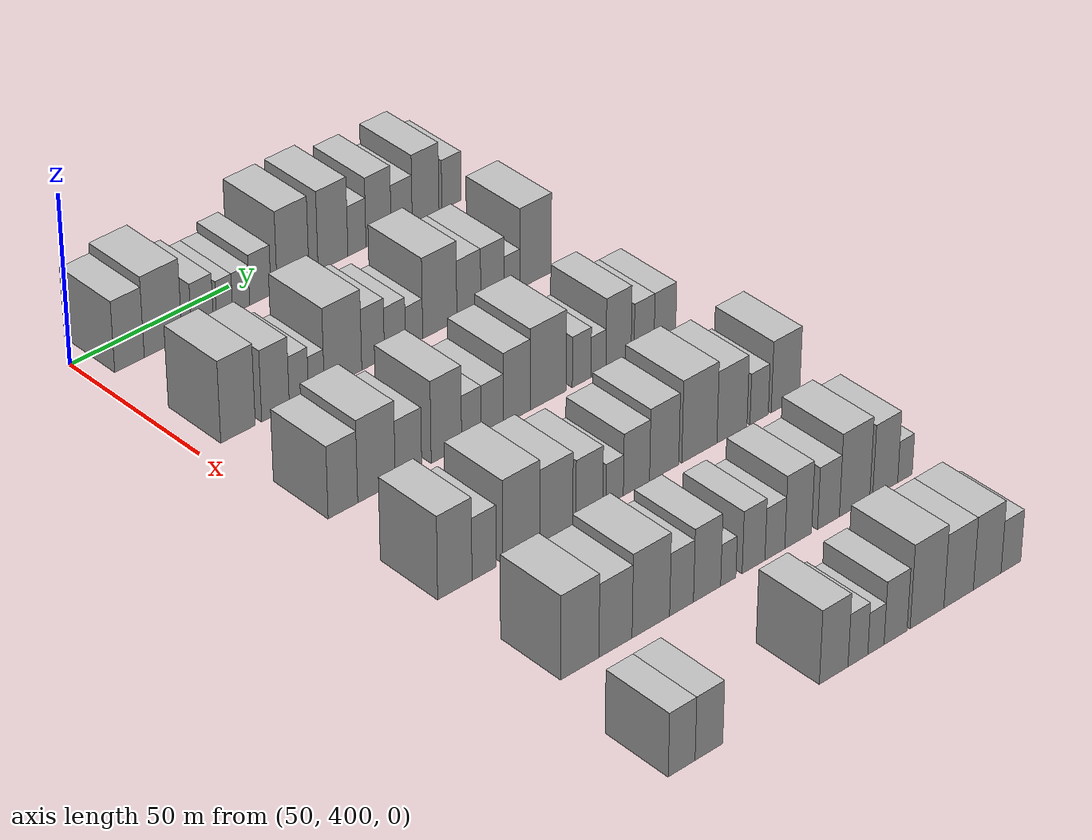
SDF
<sdf version="1.6">
 <world name="default">
  <model name="building_111">
   <static>1</static>
   <pose>50.0000 410.4934 0 0.000000 0.000000 0.000000</pose>
   <link name="link">
    <pose>0 0 10.50 0 0 0</pose>
    <collision name="collision"><geometry><box><size>20.0000 9.2095 21.0000</size></box></geometry></collision>
    <visual name="visual">
     <cast_shadows>0</cast_shadows>
     <geometry><box><size>20.0000 9.2095 21.0000</size></box></geometry>
     <material>
      <script>
       <uri>model://HANNAS_wall/materials/scripts</uri>
       <uri>model://HANNAS_wall/materials/textures</uri>
       <name>vrc/HANNAS_wall</name>
      </script>
     </material>
    </visual>
   </link>
  </model>
  <model name="building_112">
   <static>1</static>
   <pose>50.0000 421.0417 0 0.000000 0.000000 0.000000</pose>
   <link name="link">
    <pose>0 0 12.00 0 0 0</pose>
    <collision name="collision"><geometry><box><size>20.0000 11.8872 24.0000</size></box></geometry></collision>
    <visual name="visual">
     <cast_shadows>0</cast_shadows>
     <geometry><box><size>20.0000 11.8872 24.0000</size></box></geometry>
     <material>
      <script>
       <uri>model://HANNAS_wall/materials/scripts</uri>
       <uri>model://HANNAS_wall/materials/textures</uri>
       <name>vrc/HANNAS_wall</name>
      </script>
     </material>
    </visual>
   </link>
  </model>
  <model name="building_113">
   <static>1</static>
   <pose>50.0000 433.4718 0 0.000000 0.000000 0.000000</pose>
   <link name="link">
    <pose>0 0 7.50 0 0 0</pose>
    <collision name="collision"><geometry><box><size>20.0000 6.9730 15.0000</size></box></geometry></collision>
    <visual name="visual">
     <cast_shadows>0</cast_shadows>
     <geometry><box><size>20.0000 6.9730 15.0000</size></box></geometry>
     <material>
      <script>
       <uri>model://HANNAS_wall/materials/scripts</uri>
       <uri>model://HANNAS_wall/materials/textures</uri>
       <name>vrc/HANNAS_wall</name>
      </script>
     </material>
    </visual>
   </link>
  </model>
  <model name="building_114">
   <static>1</static>
   <pose>50.0000 440.5462 0 0.000000 0.000000 0.000000</pose>
   <link name="link">
    <pose>0 0 6.00 0 0 0</pose>
    <collision name="collision"><geometry><box><size>20.0000 5.1759 12.0000</size></box></geometry></collision>
    <visual name="visual">
     <cast_shadows>0</cast_shadows>
     <geometry><box><size>20.0000 5.1759 12.0000</size></box></geometry>
     <material>
      <script>
       <uri>model://HANNAS_wall/materials/scripts</uri>
       <uri>model://HANNAS_wall/materials/textures</uri>
       <name>vrc/HANNAS_wall</name>
      </script>
     </material>
    </visual>
   </link>
  </model>
  <model name="building_115">
   <static>1</static>
   <pose>50.0000 445.8748 0 0.000000 0.000000 0.000000</pose>
   <link name="link">
    <pose>0 0 6.00 0 0 0</pose>
    <collision name="collision"><geometry><box><size>20.0000 5.4814 12.0000</size></box></geometry></collision>
    <visual name="visual">
     <cast_shadows>0</cast_shadows>
     <geometry><box><size>20.0000 5.4814 12.0000</size></box></geometry>
     <material>
      <script>
       <uri>model://HANNAS_wall/materials/scripts</uri>
       <uri>model://HANNAS_wall/materials/textures</uri>
       <name>vrc/HANNAS_wall</name>
      </script>
     </material>
    </visual>
   </link>
  </model>
  <model name="building_116">
   <static>1</static>
   <pose>50.0000 452.0644 0 0.000000 0.000000 0.000000</pose>
   <link name="link">
    <pose>0 0 7.50 0 0 0</pose>
    <collision name="collision"><geometry><box><size>20.0000 6.8977 15.0000</size></box></geometry></collision>
    <visual name="visual">
     <cast_shadows>0</cast_shadows>
     <geometry><box><size>20.0000 6.8977 15.0000</size></box></geometry>
     <material>
      <script>
       <uri>model://HANNAS_wall/materials/scripts</uri>
       <uri>model://HANNAS_wall/materials/textures</uri>
       <name>vrc/HANNAS_wall</name>
      </script>
     </material>
    </visual>
   </link>
  </model>
  <model name="building_117">
   <static>1</static>
   <pose>50.0000 462.7298 0 0.000000 0.000000 0.000000</pose>
   <link name="link">
    <pose>0 0 12.00 0 0 0</pose>
    <collision name="collision"><geometry><box><size>20.0000 10.4332 24.0000</size></box></geometry></collision>
    <visual name="visual">
     <cast_shadows>0</cast_shadows>
     <geometry><box><size>20.0000 10.4332 24.0000</size></box></geometry>
     <material>
      <script>
       <uri>model://HANNAS_wall/materials/scripts</uri>
       <uri>model://HANNAS_wall/materials/textures</uri>
       <name>vrc/HANNAS_wall</name>
      </script>
     </material>
    </visual>
   </link>
  </model>
  <model name="building_118">
   <static>1</static>
   <pose>50.0000 475.8996 0 0.000000 0.000000 0.000000</pose>
   <link name="link">
    <pose>0 0 12.00 0 0 0</pose>
    <collision name="collision"><geometry><box><size>20.0000 9.9064 24.0000</size></box></geometry></collision>
    <visual name="visual">
     <cast_shadows>0</cast_shadows>
     <geometry><box><size>20.0000 9.9064 24.0000</size></box></geometry>
     <material>
      <script>
       <uri>model://HANNAS_wall/materials/scripts</uri>
       <uri>model://HANNAS_wall/materials/textures</uri>
       <name>vrc/HANNAS_wall</name>
      </script>
     </material>
    </visual>
   </link>
  </model>
  <model name="building_119">
   <static>1</static>
   <pose>50.0000 483.8737 0 0.000000 0.000000 0.000000</pose>
   <link name="link">
    <pose>0 0 7.50 0 0 0</pose>
    <collision name="collision"><geometry><box><size>20.0000 6.0419 15.0000</size></box></geometry></collision>
    <visual name="visual">
     <cast_shadows>0</cast_shadows>
     <geometry><box><size>20.0000 6.0419 15.0000</size></box></geometry>
     <material>
      <script>
       <uri>model://HANNAS_wall/materials/scripts</uri>
       <uri>model://HANNAS_wall/materials/textures</uri>
       <name>vrc/HANNAS_wall</name>
      </script>
     </material>
    </visual>
   </link>
  </model>
  <model name="building_120">
   <static>1</static>
   <pose>50.0000 491.1291 0 0.000000 0.000000 0.000000</pose>
   <link name="link">
    <pose>0 0 10.50 0 0 0</pose>
    <collision name="collision"><geometry><box><size>20.0000 8.4690 21.0000</size></box></geometry></collision>
    <visual name="visual">
     <cast_shadows>0</cast_shadows>
     <geometry><box><size>20.0000 8.4690 21.0000</size></box></geometry>
     <material>
      <script>
       <uri>model://HANNAS_wall/materials/scripts</uri>
       <uri>model://HANNAS_wall/materials/textures</uri>
       <name>vrc/HANNAS_wall</name>
      </script>
     </material>
    </visual>
   </link>
  </model>
  <model name="building_121">
   <static>1</static>
   <pose>50.0000 498.9281 0 0.000000 0.000000 0.000000</pose>
   <link name="link">
    <pose>0 0 7.50 0 0 0</pose>
    <collision name="collision"><geometry><box><size>20.0000 7.1290 15.0000</size></box></geometry></collision>
    <visual name="visual">
     <cast_shadows>0</cast_shadows>
     <geometry><box><size>20.0000 7.1290 15.0000</size></box></geometry>
     <material>
      <script>
       <uri>model://HANNAS_wall/materials/scripts</uri>
       <uri>model://HANNAS_wall/materials/textures</uri>
       <name>vrc/HANNAS_wall</name>
      </script>
     </material>
    </visual>
   </link>
  </model>
  <model name="building_122">
   <static>1</static>
   <pose>50.0000 507.0563 0 0.000000 0.000000 0.000000</pose>
   <link name="link">
    <pose>0 0 10.50 0 0 0</pose>
    <collision name="collision"><geometry><box><size>20.0000 9.1274 21.0000</size></box></geometry></collision>
    <visual name="visual">
     <cast_shadows>0</cast_shadows>
     <geometry><box><size>20.0000 9.1274 21.0000</size></box></geometry>
     <material>
      <script>
       <uri>model://HANNAS_wall/materials/scripts</uri>
       <uri>model://HANNAS_wall/materials/textures</uri>
       <name>vrc/HANNAS_wall</name>
      </script>
     </material>
    </visual>
   </link>
  </model>
  <model name="building_123">
   <static>1</static>
   <pose>50.0000 515.9255 0 0.000000 0.000000 0.000000</pose>
   <link name="link">
    <pose>0 0 7.50 0 0 0</pose>
    <collision name="collision"><geometry><box><size>20.0000 6.6109 15.0000</size></box></geometry></collision>
    <visual name="visual">
     <cast_shadows>0</cast_shadows>
     <geometry><box><size>20.0000 6.6109 15.0000</size></box></geometry>
     <material>
      <script>
       <uri>model://HANNAS_wall/materials/scripts</uri>
       <uri>model://HANNAS_wall/materials/textures</uri>
       <name>vrc/HANNAS_wall</name>
      </script>
     </material>
    </visual>
   </link>
  </model>
  <model name="building_245">
   <static>1</static>
   <pose>90.0000 412.0088 0 0.000000 0.000000 0.000000</pose>
   <link name="link">
    <pose>0 0 12.00 0 0 0</pose>
    <collision name="collision"><geometry><box><size>20.0000 10.6974 24.0000</size></box></geometry></collision>
    <visual name="visual">
     <cast_shadows>0</cast_shadows>
     <geometry><box><size>20.0000 10.6974 24.0000</size></box></geometry>
     <material>
      <script>
       <uri>model://HANNAS_wall/materials/scripts</uri>
       <uri>model://HANNAS_wall/materials/textures</uri>
       <name>vrc/HANNAS_wall</name>
      </script>
     </material>
    </visual>
   </link>
  </model>
  <model name="building_246">
   <static>1</static>
   <pose>90.0000 423.6980 0 0.000000 0.000000 0.000000</pose>
   <link name="link">
    <pose>0 0 10.50 0 0 0</pose>
    <collision name="collision"><geometry><box><size>20.0000 8.6811 21.0000</size></box></geometry></collision>
    <visual name="visual">
     <cast_shadows>0</cast_shadows>
     <geometry><box><size>20.0000 8.6811 21.0000</size></box></geometry>
     <material>
      <script>
       <uri>model://HANNAS_wall/materials/scripts</uri>
       <uri>model://HANNAS_wall/materials/textures</uri>
       <name>vrc/HANNAS_wall</name>
      </script>
     </material>
    </visual>
   </link>
  </model>
  <model name="building_247">
   <static>1</static>
   <pose>90.0000 431.0797 0 0.000000 0.000000 0.000000</pose>
   <link name="link">
    <pose>0 0 7.50 0 0 0</pose>
    <collision name="collision"><geometry><box><size>20.0000 6.0824 15.0000</size></box></geometry></collision>
    <visual name="visual">
     <cast_shadows>0</cast_shadows>
     <geometry><box><size>20.0000 6.0824 15.0000</size></box></geometry>
     <material>
      <script>
       <uri>model://HANNAS_wall/materials/scripts</uri>
       <uri>model://HANNAS_wall/materials/textures</uri>
       <name>vrc/HANNAS_wall</name>
      </script>
     </material>
    </visual>
   </link>
  </model>
  <model name="building_248">
   <static>1</static>
   <pose>90.0000 436.6117 0 0.000000 0.000000 0.000000</pose>
   <link name="link">
    <pose>0 0 6.00 0 0 0</pose>
    <collision name="collision"><geometry><box><size>20.0000 4.9816 12.0000</size></box></geometry></collision>
    <visual name="visual">
     <cast_shadows>0</cast_shadows>
     <geometry><box><size>20.0000 4.9816 12.0000</size></box></geometry>
     <material>
      <script>
       <uri>model://HANNAS_wall/materials/scripts</uri>
       <uri>model://HANNAS_wall/materials/textures</uri>
       <name>vrc/HANNAS_wall</name>
      </script>
     </material>
    </visual>
   </link>
  </model>
  <model name="building_249">
   <static>1</static>
   <pose>90.0000 445.1021 0 0.000000 0.000000 0.000000</pose>
   <link name="link">
    <pose>0 0 12.00 0 0 0</pose>
    <collision name="collision"><geometry><box><size>20.0000 11.9992 24.0000</size></box></geometry></collision>
    <visual name="visual">
     <cast_shadows>0</cast_shadows>
     <geometry><box><size>20.0000 11.9992 24.0000</size></box></geometry>
     <material>
      <script>
       <uri>model://HANNAS_wall/materials/scripts</uri>
       <uri>model://HANNAS_wall/materials/textures</uri>
       <name>vrc/HANNAS_wall</name>
      </script>
     </material>
    </visual>
   </link>
  </model>
  <model name="building_250">
   <static>1</static>
   <pose>90.0000 454.7749 0 0.000000 0.000000 0.000000</pose>
   <link name="link">
    <pose>0 0 9.00 0 0 0</pose>
    <collision name="collision"><geometry><box><size>20.0000 7.3465 18.0000</size></box></geometry></collision>
    <visual name="visual">
     <cast_shadows>0</cast_shadows>
     <geometry><box><size>20.0000 7.3465 18.0000</size></box></geometry>
     <material>
      <script>
       <uri>model://HANNAS_wall/materials/scripts</uri>
       <uri>model://HANNAS_wall/materials/textures</uri>
       <name>vrc/HANNAS_wall</name>
      </script>
     </material>
    </visual>
   </link>
  </model>
  <model name="building_251">
   <static>1</static>
   <pose>90.0000 461.8673 0 0.000000 0.000000 0.000000</pose>
   <link name="link">
    <pose>0 0 7.50 0 0 0</pose>
    <collision name="collision"><geometry><box><size>20.0000 6.8382 15.0000</size></box></geometry></collision>
    <visual name="visual">
     <cast_shadows>0</cast_shadows>
     <geometry><box><size>20.0000 6.8382 15.0000</size></box></geometry>
     <material>
      <script>
       <uri>model://HANNAS_wall/materials/scripts</uri>
       <uri>model://HANNAS_wall/materials/textures</uri>
       <name>vrc/HANNAS_wall</name>
      </script>
     </material>
    </visual>
   </link>
  </model>
  <model name="building_252">
   <static>1</static>
   <pose>90.0000 468.1098 0 0.000000 0.000000 0.000000</pose>
   <link name="link">
    <pose>0 0 6.00 0 0 0</pose>
    <collision name="collision"><geometry><box><size>20.0000 5.6470 12.0000</size></box></geometry></collision>
    <visual name="visual">
     <cast_shadows>0</cast_shadows>
     <geometry><box><size>20.0000 5.6470 12.0000</size></box></geometry>
     <material>
      <script>
       <uri>model://HANNAS_wall/materials/scripts</uri>
       <uri>model://HANNAS_wall/materials/textures</uri>
       <name>vrc/HANNAS_wall</name>
      </script>
     </material>
    </visual>
   </link>
  </model>
  <model name="building_253">
   <static>1</static>
   <pose>90.0000 476.5804 0 0.000000 0.000000 0.000000</pose>
   <link name="link">
    <pose>0 0 12.00 0 0 0</pose>
    <collision name="collision"><geometry><box><size>20.0000 11.2941 24.0000</size></box></geometry></collision>
    <visual name="visual">
     <cast_shadows>0</cast_shadows>
     <geometry><box><size>20.0000 11.2941 24.0000</size></box></geometry>
     <material>
      <script>
       <uri>model://HANNAS_wall/materials/scripts</uri>
       <uri>model://HANNAS_wall/materials/textures</uri>
       <name>vrc/HANNAS_wall</name>
      </script>
     </material>
    </visual>
   </link>
  </model>
  <model name="building_254">
   <static>1</static>
   <pose>90.0000 486.2140 0 0.000000 0.000000 0.000000</pose>
   <link name="link">
    <pose>0 0 9.00 0 0 0</pose>
    <collision name="collision"><geometry><box><size>20.0000 7.9732 18.0000</size></box></geometry></collision>
    <visual name="visual">
     <cast_shadows>0</cast_shadows>
     <geometry><box><size>20.0000 7.9732 18.0000</size></box></geometry>
     <material>
      <script>
       <uri>model://HANNAS_wall/materials/scripts</uri>
       <uri>model://HANNAS_wall/materials/textures</uri>
       <name>vrc/HANNAS_wall</name>
      </script>
     </material>
    </visual>
   </link>
  </model>
  <model name="building_255">
   <static>1</static>
   <pose>90.0000 494.1838 0 0.000000 0.000000 0.000000</pose>
   <link name="link">
    <pose>0 0 9.00 0 0 0</pose>
    <collision name="collision"><geometry><box><size>20.0000 7.9664 18.0000</size></box></geometry></collision>
    <visual name="visual">
     <cast_shadows>0</cast_shadows>
     <geometry><box><size>20.0000 7.9664 18.0000</size></box></geometry>
     <material>
      <script>
       <uri>model://HANNAS_wall/materials/scripts</uri>
       <uri>model://HANNAS_wall/materials/textures</uri>
       <name>vrc/HANNAS_wall</name>
      </script>
     </material>
    </visual>
   </link>
  </model>
  <model name="building_256">
   <static>1</static>
   <pose>90.0000 500.7454 0 0.000000 0.000000 0.000000</pose>
   <link name="link">
    <pose>0 0 6.00 0 0 0</pose>
    <collision name="collision"><geometry><box><size>20.0000 5.1568 12.0000</size></box></geometry></collision>
    <visual name="visual">
     <cast_shadows>0</cast_shadows>
     <geometry><box><size>20.0000 5.1568 12.0000</size></box></geometry>
     <material>
      <script>
       <uri>model://HANNAS_wall/materials/scripts</uri>
       <uri>model://HANNAS_wall/materials/textures</uri>
       <name>vrc/HANNAS_wall</name>
      </script>
     </material>
    </visual>
   </link>
  </model>
  <model name="building_257">
   <static>1</static>
   <pose>90.0000 508.7018 0 0.000000 0.000000 0.000000</pose>
   <link name="link">
    <pose>0 0 12.00 0 0 0</pose>
    <collision name="collision"><geometry><box><size>20.0000 10.7560 24.0000</size></box></geometry></collision>
    <visual name="visual">
     <cast_shadows>0</cast_shadows>
     <geometry><box><size>20.0000 10.7560 24.0000</size></box></geometry>
     <material>
      <script>
       <uri>model://HANNAS_wall/materials/scripts</uri>
       <uri>model://HANNAS_wall/materials/textures</uri>
       <name>vrc/HANNAS_wall</name>
      </script>
     </material>
    </visual>
   </link>
  </model>
  <model name="building_378">
   <static>1</static>
   <pose>130.0000 410.9265 0 0.000000 0.000000 0.000000</pose>
   <link name="link">
    <pose>0 0 10.50 0 0 0</pose>
    <collision name="collision"><geometry><box><size>20.0000 9.1145 21.0000</size></box></geometry></collision>
    <visual name="visual">
     <cast_shadows>0</cast_shadows>
     <geometry><box><size>20.0000 9.1145 21.0000</size></box></geometry>
     <material>
      <script>
       <uri>model://HANNAS_wall/materials/scripts</uri>
       <uri>model://HANNAS_wall/materials/textures</uri>
       <name>vrc/HANNAS_wall</name>
      </script>
     </material>
    </visual>
   </link>
  </model>
  <model name="building_379">
   <static>1</static>
   <pose>130.0000 421.3368 0 0.000000 0.000000 0.000000</pose>
   <link name="link">
    <pose>0 0 12.00 0 0 0</pose>
    <collision name="collision"><geometry><box><size>20.0000 11.7062 24.0000</size></box></geometry></collision>
    <visual name="visual">
     <cast_shadows>0</cast_shadows>
     <geometry><box><size>20.0000 11.7062 24.0000</size></box></geometry>
     <material>
      <script>
       <uri>model://HANNAS_wall/materials/scripts</uri>
       <uri>model://HANNAS_wall/materials/textures</uri>
       <name>vrc/HANNAS_wall</name>
      </script>
     </material>
    </visual>
   </link>
  </model>
  <model name="building_380">
   <static>1</static>
   <pose>130.0000 431.3370 0 0.000000 0.000000 0.000000</pose>
   <link name="link">
    <pose>0 0 9.00 0 0 0</pose>
    <collision name="collision"><geometry><box><size>20.0000 8.2944 18.0000</size></box></geometry></collision>
    <visual name="visual">
     <cast_shadows>0</cast_shadows>
     <geometry><box><size>20.0000 8.2944 18.0000</size></box></geometry>
     <material>
      <script>
       <uri>model://HANNAS_wall/materials/scripts</uri>
       <uri>model://HANNAS_wall/materials/textures</uri>
       <name>vrc/HANNAS_wall</name>
      </script>
     </material>
    </visual>
   </link>
  </model>
  <model name="building_381">
   <static>1</static>
   <pose>130.0000 443.3262 0 0.000000 0.000000 0.000000</pose>
   <link name="link">
    <pose>0 0 12.00 0 0 0</pose>
    <collision name="collision"><geometry><box><size>20.0000 9.6839 24.0000</size></box></geometry></collision>
    <visual name="visual">
     <cast_shadows>0</cast_shadows>
     <geometry><box><size>20.0000 9.6839 24.0000</size></box></geometry>
     <material>
      <script>
       <uri>model://HANNAS_wall/materials/scripts</uri>
       <uri>model://HANNAS_wall/materials/textures</uri>
       <name>vrc/HANNAS_wall</name>
      </script>
     </material>
    </visual>
   </link>
  </model>
  <model name="building_382">
   <static>1</static>
   <pose>130.0000 451.3270 0 0.000000 0.000000 0.000000</pose>
   <link name="link">
    <pose>0 0 7.50 0 0 0</pose>
    <collision name="collision"><geometry><box><size>20.0000 6.3177 15.0000</size></box></geometry></collision>
    <visual name="visual">
     <cast_shadows>0</cast_shadows>
     <geometry><box><size>20.0000 6.3177 15.0000</size></box></geometry>
     <material>
      <script>
       <uri>model://HANNAS_wall/materials/scripts</uri>
       <uri>model://HANNAS_wall/materials/textures</uri>
       <name>vrc/HANNAS_wall</name>
      </script>
     </material>
    </visual>
   </link>
  </model>
  <model name="building_383">
   <static>1</static>
   <pose>130.0000 458.0517 0 0.000000 0.000000 0.000000</pose>
   <link name="link">
    <pose>0 0 7.50 0 0 0</pose>
    <collision name="collision"><geometry><box><size>20.0000 7.1315 15.0000</size></box></geometry></collision>
    <visual name="visual">
     <cast_shadows>0</cast_shadows>
     <geometry><box><size>20.0000 7.1315 15.0000</size></box></geometry>
     <material>
      <script>
       <uri>model://HANNAS_wall/materials/scripts</uri>
       <uri>model://HANNAS_wall/materials/textures</uri>
       <name>vrc/HANNAS_wall</name>
      </script>
     </material>
    </visual>
   </link>
  </model>
  <model name="building_384">
   <static>1</static>
   <pose>130.0000 465.9561 0 0.000000 0.000000 0.000000</pose>
   <link name="link">
    <pose>0 0 10.50 0 0 0</pose>
    <collision name="collision"><geometry><box><size>20.0000 8.6775 21.0000</size></box></geometry></collision>
    <visual name="visual">
     <cast_shadows>0</cast_shadows>
     <geometry><box><size>20.0000 8.6775 21.0000</size></box></geometry>
     <material>
      <script>
       <uri>model://HANNAS_wall/materials/scripts</uri>
       <uri>model://HANNAS_wall/materials/textures</uri>
       <name>vrc/HANNAS_wall</name>
      </script>
     </material>
    </visual>
   </link>
  </model>
  <model name="building_385">
   <static>1</static>
   <pose>130.0000 476.2542 0 0.000000 0.000000 0.000000</pose>
   <link name="link">
    <pose>0 0 12.00 0 0 0</pose>
    <collision name="collision"><geometry><box><size>20.0000 11.9186 24.0000</size></box></geometry></collision>
    <visual name="visual">
     <cast_shadows>0</cast_shadows>
     <geometry><box><size>20.0000 11.9186 24.0000</size></box></geometry>
     <material>
      <script>
       <uri>model://HANNAS_wall/materials/scripts</uri>
       <uri>model://HANNAS_wall/materials/textures</uri>
       <name>vrc/HANNAS_wall</name>
      </script>
     </material>
    </visual>
   </link>
  </model>
  <model name="building_386">
   <static>1</static>
   <pose>130.0000 487.3338 0 0.000000 0.000000 0.000000</pose>
   <link name="link">
    <pose>0 0 7.50 0 0 0</pose>
    <collision name="collision"><geometry><box><size>20.0000 6.2406 15.0000</size></box></geometry></collision>
    <visual name="visual">
     <cast_shadows>0</cast_shadows>
     <geometry><box><size>20.0000 6.2406 15.0000</size></box></geometry>
     <material>
      <script>
       <uri>model://HANNAS_wall/materials/scripts</uri>
       <uri>model://HANNAS_wall/materials/textures</uri>
       <name>vrc/HANNAS_wall</name>
      </script>
     </material>
    </visual>
   </link>
  </model>
  <model name="building_387">
   <static>1</static>
   <pose>130.0000 492.9416 0 0.000000 0.000000 0.000000</pose>
   <link name="link">
    <pose>0 0 6.00 0 0 0</pose>
    <collision name="collision"><geometry><box><size>20.0000 4.9750 12.0000</size></box></geometry></collision>
    <visual name="visual">
     <cast_shadows>0</cast_shadows>
     <geometry><box><size>20.0000 4.9750 12.0000</size></box></geometry>
     <material>
      <script>
       <uri>model://HANNAS_wall/materials/scripts</uri>
       <uri>model://HANNAS_wall/materials/textures</uri>
       <name>vrc/HANNAS_wall</name>
      </script>
     </material>
    </visual>
   </link>
  </model>
  <model name="building_388">
   <static>1</static>
   <pose>130.0000 499.6647 0 0.000000 0.000000 0.000000</pose>
   <link name="link">
    <pose>0 0 10.50 0 0 0</pose>
    <collision name="collision"><geometry><box><size>20.0000 8.4713 21.0000</size></box></geometry></collision>
    <visual name="visual">
     <cast_shadows>0</cast_shadows>
     <geometry><box><size>20.0000 8.4713 21.0000</size></box></geometry>
     <material>
      <script>
       <uri>model://HANNAS_wall/materials/scripts</uri>
       <uri>model://HANNAS_wall/materials/textures</uri>
       <name>vrc/HANNAS_wall</name>
      </script>
     </material>
    </visual>
   </link>
  </model>
  <model name="building_389">
   <static>1</static>
   <pose>130.0000 508.3076 0 0.000000 0.000000 0.000000</pose>
   <link name="link">
    <pose>0 0 7.50 0 0 0</pose>
    <collision name="collision"><geometry><box><size>20.0000 6.8143 15.0000</size></box></geometry></collision>
    <visual name="visual">
     <cast_shadows>0</cast_shadows>
     <geometry><box><size>20.0000 6.8143 15.0000</size></box></geometry>
     <material>
      <script>
       <uri>model://HANNAS_wall/materials/scripts</uri>
       <uri>model://HANNAS_wall/materials/textures</uri>
       <name>vrc/HANNAS_wall</name>
      </script>
     </material>
    </visual>
   </link>
  </model>
  <model name="building_390">
   <static>1</static>
   <pose>130.0000 515.4043 0 0.000000 0.000000 0.000000</pose>
   <link name="link">
    <pose>0 0 7.50 0 0 0</pose>
    <collision name="collision"><geometry><box><size>20.0000 7.3792 15.0000</size></box></geometry></collision>
    <visual name="visual">
     <cast_shadows>0</cast_shadows>
     <geometry><box><size>20.0000 7.3792 15.0000</size></box></geometry>
     <material>
      <script>
       <uri>model://HANNAS_wall/materials/scripts</uri>
       <uri>model://HANNAS_wall/materials/textures</uri>
       <name>vrc/HANNAS_wall</name>
      </script>
     </material>
    </visual>
   </link>
  </model>
  <model name="building_522">
   <static>1</static>
   <pose>170.0000 410.4544 0 0.000000 0.000000 0.000000</pose>
   <link name="link">
    <pose>0 0 12.00 0 0 0</pose>
    <collision name="collision"><geometry><box><size>20.0000 10.5241 24.0000</size></box></geometry></collision>
    <visual name="visual">
     <cast_shadows>0</cast_shadows>
     <geometry><box><size>20.0000 10.5241 24.0000</size></box></geometry>
     <material>
      <script>
       <uri>model://HANNAS_wall/materials/scripts</uri>
       <uri>model://HANNAS_wall/materials/textures</uri>
       <name>vrc/HANNAS_wall</name>
      </script>
     </material>
    </visual>
   </link>
  </model>
  <model name="building_523">
   <static>1</static>
   <pose>170.0000 419.4380 0 0.000000 0.000000 0.000000</pose>
   <link name="link">
    <pose>0 0 9.00 0 0 0</pose>
    <collision name="collision"><geometry><box><size>20.0000 7.4431 18.0000</size></box></geometry></collision>
    <visual name="visual">
     <cast_shadows>0</cast_shadows>
     <geometry><box><size>20.0000 7.4431 18.0000</size></box></geometry>
     <material>
      <script>
       <uri>model://HANNAS_wall/materials/scripts</uri>
       <uri>model://HANNAS_wall/materials/textures</uri>
       <name>vrc/HANNAS_wall</name>
      </script>
     </material>
    </visual>
   </link>
  </model>
  <model name="building_524">
   <static>1</static>
   <pose>170.0000 430.9793 0 0.000000 0.000000 0.000000</pose>
   <link name="link">
    <pose>0 0 12.00 0 0 0</pose>
    <collision name="collision"><geometry><box><size>20.0000 11.6396 24.0000</size></box></geometry></collision>
    <visual name="visual">
     <cast_shadows>0</cast_shadows>
     <geometry><box><size>20.0000 11.6396 24.0000</size></box></geometry>
     <material>
      <script>
       <uri>model://HANNAS_wall/materials/scripts</uri>
       <uri>model://HANNAS_wall/materials/textures</uri>
       <name>vrc/HANNAS_wall</name>
      </script>
     </material>
    </visual>
   </link>
  </model>
  <model name="building_525">
   <static>1</static>
   <pose>170.0000 442.0294 0 0.000000 0.000000 0.000000</pose>
   <link name="link">
    <pose>0 0 10.50 0 0 0</pose>
    <collision name="collision"><geometry><box><size>20.0000 10.4604 21.0000</size></box></geometry></collision>
    <visual name="visual">
     <cast_shadows>0</cast_shadows>
     <geometry><box><size>20.0000 10.4604 21.0000</size></box></geometry>
     <material>
      <script>
       <uri>model://HANNAS_wall/materials/scripts</uri>
       <uri>model://HANNAS_wall/materials/textures</uri>
       <name>vrc/HANNAS_wall</name>
      </script>
     </material>
    </visual>
   </link>
  </model>
  <model name="building_526">
   <static>1</static>
   <pose>170.0000 452.5670 0 0.000000 0.000000 0.000000</pose>
   <link name="link">
    <pose>0 0 9.00 0 0 0</pose>
    <collision name="collision"><geometry><box><size>20.0000 8.6148 18.0000</size></box></geometry></collision>
    <visual name="visual">
     <cast_shadows>0</cast_shadows>
     <geometry><box><size>20.0000 8.6148 18.0000</size></box></geometry>
     <material>
      <script>
       <uri>model://HANNAS_wall/materials/scripts</uri>
       <uri>model://HANNAS_wall/materials/textures</uri>
       <name>vrc/HANNAS_wall</name>
      </script>
     </material>
    </visual>
   </link>
  </model>
  <model name="building_527">
   <static>1</static>
   <pose>170.0000 460.6892 0 0.000000 0.000000 0.000000</pose>
   <link name="link">
    <pose>0 0 6.00 0 0 0</pose>
    <collision name="collision"><geometry><box><size>20.0000 5.6297 12.0000</size></box></geometry></collision>
    <visual name="visual">
     <cast_shadows>0</cast_shadows>
     <geometry><box><size>20.0000 5.6297 12.0000</size></box></geometry>
     <material>
      <script>
       <uri>model://HANNAS_wall/materials/scripts</uri>
       <uri>model://HANNAS_wall/materials/textures</uri>
       <name>vrc/HANNAS_wall</name>
      </script>
     </material>
    </visual>
   </link>
  </model>
  <model name="building_528">
   <static>1</static>
   <pose>170.0000 467.7677 0 0.000000 0.000000 0.000000</pose>
   <link name="link">
    <pose>0 0 9.00 0 0 0</pose>
    <collision name="collision"><geometry><box><size>20.0000 8.5272 18.0000</size></box></geometry></collision>
    <visual name="visual">
     <cast_shadows>0</cast_shadows>
     <geometry><box><size>20.0000 8.5272 18.0000</size></box></geometry>
     <material>
      <script>
       <uri>model://HANNAS_wall/materials/scripts</uri>
       <uri>model://HANNAS_wall/materials/textures</uri>
       <name>vrc/HANNAS_wall</name>
      </script>
     </material>
    </visual>
   </link>
  </model>
  <model name="building_529">
   <static>1</static>
   <pose>170.0000 476.8272 0 0.000000 0.000000 0.000000</pose>
   <link name="link">
    <pose>0 0 10.50 0 0 0</pose>
    <collision name="collision"><geometry><box><size>20.0000 9.5918 21.0000</size></box></geometry></collision>
    <visual name="visual">
     <cast_shadows>0</cast_shadows>
     <geometry><box><size>20.0000 9.5918 21.0000</size></box></geometry>
     <material>
      <script>
       <uri>model://HANNAS_wall/materials/scripts</uri>
       <uri>model://HANNAS_wall/materials/textures</uri>
       <name>vrc/HANNAS_wall</name>
      </script>
     </material>
    </visual>
   </link>
  </model>
  <model name="building_530">
   <static>1</static>
   <pose>170.0000 488.4587 0 0.000000 0.000000 0.000000</pose>
   <link name="link">
    <pose>0 0 12.00 0 0 0</pose>
    <collision name="collision"><geometry><box><size>20.0000 11.6712 24.0000</size></box></geometry></collision>
    <visual name="visual">
     <cast_shadows>0</cast_shadows>
     <geometry><box><size>20.0000 11.6712 24.0000</size></box></geometry>
     <material>
      <script>
       <uri>model://HANNAS_wall/materials/scripts</uri>
       <uri>model://HANNAS_wall/materials/textures</uri>
       <name>vrc/HANNAS_wall</name>
      </script>
     </material>
    </visual>
   </link>
  </model>
  <model name="building_531">
   <static>1</static>
   <pose>170.0000 499.3355 0 0.000000 0.000000 0.000000</pose>
   <link name="link">
    <pose>0 0 10.50 0 0 0</pose>
    <collision name="collision"><geometry><box><size>20.0000 10.0824 21.0000</size></box></geometry></collision>
    <visual name="visual">
     <cast_shadows>0</cast_shadows>
     <geometry><box><size>20.0000 10.0824 21.0000</size></box></geometry>
     <material>
      <script>
       <uri>model://HANNAS_wall/materials/scripts</uri>
       <uri>model://HANNAS_wall/materials/textures</uri>
       <name>vrc/HANNAS_wall</name>
      </script>
     </material>
    </visual>
   </link>
  </model>
  <model name="building_532">
   <static>1</static>
   <pose>170.0000 508.4857 0 0.000000 0.000000 0.000000</pose>
   <link name="link">
    <pose>0 0 7.50 0 0 0</pose>
    <collision name="collision"><geometry><box><size>20.0000 6.2180 15.0000</size></box></geometry></collision>
    <visual name="visual">
     <cast_shadows>0</cast_shadows>
     <geometry><box><size>20.0000 6.2180 15.0000</size></box></geometry>
     <material>
      <script>
       <uri>model://HANNAS_wall/materials/scripts</uri>
       <uri>model://HANNAS_wall/materials/textures</uri>
       <name>vrc/HANNAS_wall</name>
      </script>
     </material>
    </visual>
   </link>
  </model>
  <model name="building_533">
   <static>1</static>
   <pose>170.0000 517.4219 0 0.000000 0.000000 0.000000</pose>
   <link name="link">
    <pose>0 0 10.50 0 0 0</pose>
    <collision name="collision"><geometry><box><size>20.0000 9.6544 21.0000</size></box></geometry></collision>
    <visual name="visual">
     <cast_shadows>0</cast_shadows>
     <geometry><box><size>20.0000 9.6544 21.0000</size></box></geometry>
     <material>
      <script>
       <uri>model://HANNAS_wall/materials/scripts</uri>
       <uri>model://HANNAS_wall/materials/textures</uri>
       <name>vrc/HANNAS_wall</name>
      </script>
     </material>
    </visual>
   </link>
  </model>
  <model name="building_656">
   <static>1</static>
   <pose>210.0000 412.3348 0 0.000000 0.000000 0.000000</pose>
   <link name="link">
    <pose>0 0 12.00 0 0 0</pose>
    <collision name="collision"><geometry><box><size>20.0000 11.6869 24.0000</size></box></geometry></collision>
    <visual name="visual">
     <cast_shadows>0</cast_shadows>
     <geometry><box><size>20.0000 11.6869 24.0000</size></box></geometry>
     <material>
      <script>
       <uri>model://HANNAS_wall/materials/scripts</uri>
       <uri>model://HANNAS_wall/materials/textures</uri>
       <name>vrc/HANNAS_wall</name>
      </script>
     </material>
    </visual>
   </link>
  </model>
  <model name="building_657">
   <static>1</static>
   <pose>210.0000 423.3084 0 0.000000 0.000000 0.000000</pose>
   <link name="link">
    <pose>0 0 10.50 0 0 0</pose>
    <collision name="collision"><geometry><box><size>20.0000 10.2604 21.0000</size></box></geometry></collision>
    <visual name="visual">
     <cast_shadows>0</cast_shadows>
     <geometry><box><size>20.0000 10.2604 21.0000</size></box></geometry>
     <material>
      <script>
       <uri>model://HANNAS_wall/materials/scripts</uri>
       <uri>model://HANNAS_wall/materials/textures</uri>
       <name>vrc/HANNAS_wall</name>
      </script>
     </material>
    </visual>
   </link>
  </model>
  <model name="building_658">
   <static>1</static>
   <pose>210.0000 434.3156 0 0.000000 0.000000 0.000000</pose>
   <link name="link">
    <pose>0 0 12.00 0 0 0</pose>
    <collision name="collision"><geometry><box><size>20.0000 11.7539 24.0000</size></box></geometry></collision>
    <visual name="visual">
     <cast_shadows>0</cast_shadows>
     <geometry><box><size>20.0000 11.7539 24.0000</size></box></geometry>
     <material>
      <script>
       <uri>model://HANNAS_wall/materials/scripts</uri>
       <uri>model://HANNAS_wall/materials/textures</uri>
       <name>vrc/HANNAS_wall</name>
      </script>
     </material>
    </visual>
   </link>
  </model>
  <model name="building_659">
   <static>1</static>
   <pose>210.0000 443.9648 0 0.000000 0.000000 0.000000</pose>
   <link name="link">
    <pose>0 0 9.00 0 0 0</pose>
    <collision name="collision"><geometry><box><size>20.0000 7.5446 18.0000</size></box></geometry></collision>
    <visual name="visual">
     <cast_shadows>0</cast_shadows>
     <geometry><box><size>20.0000 7.5446 18.0000</size></box></geometry>
     <material>
      <script>
       <uri>model://HANNAS_wall/materials/scripts</uri>
       <uri>model://HANNAS_wall/materials/textures</uri>
       <name>vrc/HANNAS_wall</name>
      </script>
     </material>
    </visual>
   </link>
  </model>
  <model name="building_660">
   <static>1</static>
   <pose>210.0000 452.0746 0 0.000000 0.000000 0.000000</pose>
   <link name="link">
    <pose>0 0 10.50 0 0 0</pose>
    <collision name="collision"><geometry><box><size>20.0000 8.6748 21.0000</size></box></geometry></collision>
    <visual name="visual">
     <cast_shadows>0</cast_shadows>
     <geometry><box><size>20.0000 8.6748 21.0000</size></box></geometry>
     <material>
      <script>
       <uri>model://HANNAS_wall/materials/scripts</uri>
       <uri>model://HANNAS_wall/materials/textures</uri>
       <name>vrc/HANNAS_wall</name>
      </script>
     </material>
    </visual>
   </link>
  </model>
  <model name="building_661">
   <static>1</static>
   <pose>210.0000 458.8659 0 0.000000 0.000000 0.000000</pose>
   <link name="link">
    <pose>0 0 6.00 0 0 0</pose>
    <collision name="collision"><geometry><box><size>20.0000 4.9080 12.0000</size></box></geometry></collision>
    <visual name="visual">
     <cast_shadows>0</cast_shadows>
     <geometry><box><size>20.0000 4.9080 12.0000</size></box></geometry>
     <material>
      <script>
       <uri>model://HANNAS_wall/materials/scripts</uri>
       <uri>model://HANNAS_wall/materials/textures</uri>
       <name>vrc/HANNAS_wall</name>
      </script>
     </material>
    </visual>
   </link>
  </model>
  <model name="building_662">
   <static>1</static>
   <pose>210.0000 467.0181 0 0.000000 0.000000 0.000000</pose>
   <link name="link">
    <pose>0 0 9.00 0 0 0</pose>
    <collision name="collision"><geometry><box><size>20.0000 7.3963 18.0000</size></box></geometry></collision>
    <visual name="visual">
     <cast_shadows>0</cast_shadows>
     <geometry><box><size>20.0000 7.3963 18.0000</size></box></geometry>
     <material>
      <script>
       <uri>model://HANNAS_wall/materials/scripts</uri>
       <uri>model://HANNAS_wall/materials/textures</uri>
       <name>vrc/HANNAS_wall</name>
      </script>
     </material>
    </visual>
   </link>
  </model>
  <model name="building_663">
   <static>1</static>
   <pose>210.0000 473.9560 0 0.000000 0.000000 0.000000</pose>
   <link name="link">
    <pose>0 0 7.50 0 0 0</pose>
    <collision name="collision"><geometry><box><size>20.0000 6.4794 15.0000</size></box></geometry></collision>
    <visual name="visual">
     <cast_shadows>0</cast_shadows>
     <geometry><box><size>20.0000 6.4794 15.0000</size></box></geometry>
     <material>
      <script>
       <uri>model://HANNAS_wall/materials/scripts</uri>
       <uri>model://HANNAS_wall/materials/textures</uri>
       <name>vrc/HANNAS_wall</name>
      </script>
     </material>
    </visual>
   </link>
  </model>
  <model name="building_664">
   <static>1</static>
   <pose>210.0000 481.5991 0 0.000000 0.000000 0.000000</pose>
   <link name="link">
    <pose>0 0 10.50 0 0 0</pose>
    <collision name="collision"><geometry><box><size>20.0000 8.8067 21.0000</size></box></geometry></collision>
    <visual name="visual">
     <cast_shadows>0</cast_shadows>
     <geometry><box><size>20.0000 8.8067 21.0000</size></box></geometry>
     <material>
      <script>
       <uri>model://HANNAS_wall/materials/scripts</uri>
       <uri>model://HANNAS_wall/materials/textures</uri>
       <name>vrc/HANNAS_wall</name>
      </script>
     </material>
    </visual>
   </link>
  </model>
  <model name="building_665">
   <static>1</static>
   <pose>210.0000 491.6233 0 0.000000 0.000000 0.000000</pose>
   <link name="link">
    <pose>0 0 9.00 0 0 0</pose>
    <collision name="collision"><geometry><box><size>20.0000 7.2417 18.0000</size></box></geometry></collision>
    <visual name="visual">
     <cast_shadows>0</cast_shadows>
     <geometry><box><size>20.0000 7.2417 18.0000</size></box></geometry>
     <material>
      <script>
       <uri>model://HANNAS_wall/materials/scripts</uri>
       <uri>model://HANNAS_wall/materials/textures</uri>
       <name>vrc/HANNAS_wall</name>
      </script>
     </material>
    </visual>
   </link>
  </model>
  <model name="building_666">
   <static>1</static>
   <pose>210.0000 500.3355 0 0.000000 0.000000 0.000000</pose>
   <link name="link">
    <pose>0 0 12.00 0 0 0</pose>
    <collision name="collision"><geometry><box><size>20.0000 10.1828 24.0000</size></box></geometry></collision>
    <visual name="visual">
     <cast_shadows>0</cast_shadows>
     <geometry><box><size>20.0000 10.1828 24.0000</size></box></geometry>
     <material>
      <script>
       <uri>model://HANNAS_wall/materials/scripts</uri>
       <uri>model://HANNAS_wall/materials/textures</uri>
       <name>vrc/HANNAS_wall</name>
      </script>
     </material>
    </visual>
   </link>
  </model>
  <model name="building_667">
   <static>1</static>
   <pose>210.0000 510.6603 0 0.000000 0.000000 0.000000</pose>
   <link name="link">
    <pose>0 0 10.50 0 0 0</pose>
    <collision name="collision"><geometry><box><size>20.0000 8.4669 21.0000</size></box></geometry></collision>
    <visual name="visual">
     <cast_shadows>0</cast_shadows>
     <geometry><box><size>20.0000 8.4669 21.0000</size></box></geometry>
     <material>
      <script>
       <uri>model://HANNAS_wall/materials/scripts</uri>
       <uri>model://HANNAS_wall/materials/textures</uri>
       <name>vrc/HANNAS_wall</name>
      </script>
     </material>
    </visual>
   </link>
  </model>
  <model name="building_668">
   <static>1</static>
   <pose>210.0000 517.3810 0 0.000000 0.000000 0.000000</pose>
   <link name="link">
    <pose>0 0 6.00 0 0 0</pose>
    <collision name="collision"><geometry><box><size>20.0000 4.9746 12.0000</size></box></geometry></collision>
    <visual name="visual">
     <cast_shadows>0</cast_shadows>
     <geometry><box><size>20.0000 4.9746 12.0000</size></box></geometry>
     <material>
      <script>
       <uri>model://HANNAS_wall/materials/scripts</uri>
       <uri>model://HANNAS_wall/materials/textures</uri>
       <name>vrc/HANNAS_wall</name>
      </script>
     </material>
    </visual>
   </link>
  </model>
  <model name="building_791">
   <static>1</static>
   <pose>250.0000 405.4229 0 0.000000 0.000000 0.000000</pose>
   <link name="link">
    <pose>0 0 9.00 0 0 0</pose>
    <collision name="collision"><geometry><box><size>20.0000 8.1251 18.0000</size></box></geometry></collision>
    <visual name="visual">
     <cast_shadows>0</cast_shadows>
     <geometry><box><size>20.0000 8.1251 18.0000</size></box></geometry>
     <material>
      <script>
       <uri>model://HANNAS_wall/materials/scripts</uri>
       <uri>model://HANNAS_wall/materials/textures</uri>
       <name>vrc/HANNAS_wall</name>
      </script>
     </material>
    </visual>
   </link>
  </model>
  <model name="building_792">
   <static>1</static>
   <pose>250.0000 413.7047 0 0.000000 0.000000 0.000000</pose>
   <link name="link">
    <pose>0 0 9.00 0 0 0</pose>
    <collision name="collision"><geometry><box><size>20.0000 8.4386 18.0000</size></box></geometry></collision>
    <visual name="visual">
     <cast_shadows>0</cast_shadows>
     <geometry><box><size>20.0000 8.4386 18.0000</size></box></geometry>
     <material>
      <script>
       <uri>model://HANNAS_wall/materials/scripts</uri>
       <uri>model://HANNAS_wall/materials/textures</uri>
       <name>vrc/HANNAS_wall</name>
      </script>
     </material>
    </visual>
   </link>
  </model>
  <model name="building_793">
   <static>1</static>
   <pose>250.0000 452.6204 0 0.000000 0.000000 0.000000</pose>
   <link name="link">
    <pose>0 0 10.50 0 0 0</pose>
    <collision name="collision"><geometry><box><size>20.0000 9.1309 21.0000</size></box></geometry></collision>
    <visual name="visual">
     <cast_shadows>0</cast_shadows>
     <geometry><box><size>20.0000 9.1309 21.0000</size></box></geometry>
     <material>
      <script>
       <uri>model://HANNAS_wall/materials/scripts</uri>
       <uri>model://HANNAS_wall/materials/textures</uri>
       <name>vrc/HANNAS_wall</name>
      </script>
     </material>
    </visual>
   </link>
  </model>
  <model name="building_794">
   <static>1</static>
   <pose>250.0000 460.3603 0 0.000000 0.000000 0.000000</pose>
   <link name="link">
    <pose>0 0 7.50 0 0 0</pose>
    <collision name="collision"><geometry><box><size>20.0000 6.3488 15.0000</size></box></geometry></collision>
    <visual name="visual">
     <cast_shadows>0</cast_shadows>
     <geometry><box><size>20.0000 6.3488 15.0000</size></box></geometry>
     <material>
      <script>
       <uri>model://HANNAS_wall/materials/scripts</uri>
       <uri>model://HANNAS_wall/materials/textures</uri>
       <name>vrc/HANNAS_wall</name>
      </script>
     </material>
    </visual>
   </link>
  </model>
  <model name="building_795">
   <static>1</static>
   <pose>250.0000 466.1625 0 0.000000 0.000000 0.000000</pose>
   <link name="link">
    <pose>0 0 6.00 0 0 0</pose>
    <collision name="collision"><geometry><box><size>20.0000 5.2556 12.0000</size></box></geometry></collision>
    <visual name="visual">
     <cast_shadows>0</cast_shadows>
     <geometry><box><size>20.0000 5.2556 12.0000</size></box></geometry>
     <material>
      <script>
       <uri>model://HANNAS_wall/materials/scripts</uri>
       <uri>model://HANNAS_wall/materials/textures</uri>
       <name>vrc/HANNAS_wall</name>
      </script>
     </material>
    </visual>
   </link>
  </model>
  <model name="building_796">
   <static>1</static>
   <pose>250.0000 472.5366 0 0.000000 0.000000 0.000000</pose>
   <link name="link">
    <pose>0 0 9.00 0 0 0</pose>
    <collision name="collision"><geometry><box><size>20.0000 7.4927 18.0000</size></box></geometry></collision>
    <visual name="visual">
     <cast_shadows>0</cast_shadows>
     <geometry><box><size>20.0000 7.4927 18.0000</size></box></geometry>
     <material>
      <script>
       <uri>model://HANNAS_wall/materials/scripts</uri>
       <uri>model://HANNAS_wall/materials/textures</uri>
       <name>vrc/HANNAS_wall</name>
      </script>
     </material>
    </visual>
   </link>
  </model>
  <model name="building_797">
   <static>1</static>
   <pose>250.0000 482.8268 0 0.000000 0.000000 0.000000</pose>
   <link name="link">
    <pose>0 0 12.00 0 0 0</pose>
    <collision name="collision"><geometry><box><size>20.0000 11.0878 24.0000</size></box></geometry></collision>
    <visual name="visual">
     <cast_shadows>0</cast_shadows>
     <geometry><box><size>20.0000 11.0878 24.0000</size></box></geometry>
     <material>
      <script>
       <uri>model://HANNAS_wall/materials/scripts</uri>
       <uri>model://HANNAS_wall/materials/textures</uri>
       <name>vrc/HANNAS_wall</name>
      </script>
     </material>
    </visual>
   </link>
  </model>
  <model name="building_798">
   <static>1</static>
   <pose>250.0000 493.2764 0 0.000000 0.000000 0.000000</pose>
   <link name="link">
    <pose>0 0 10.50 0 0 0</pose>
    <collision name="collision"><geometry><box><size>20.0000 9.8114 21.0000</size></box></geometry></collision>
    <visual name="visual">
     <cast_shadows>0</cast_shadows>
     <geometry><box><size>20.0000 9.8114 21.0000</size></box></geometry>
     <material>
      <script>
       <uri>model://HANNAS_wall/materials/scripts</uri>
       <uri>model://HANNAS_wall/materials/textures</uri>
       <name>vrc/HANNAS_wall</name>
      </script>
     </material>
    </visual>
   </link>
  </model>
  <model name="building_799">
   <static>1</static>
   <pose>250.0000 502.8328 0 0.000000 0.000000 0.000000</pose>
   <link name="link">
    <pose>0 0 10.50 0 0 0</pose>
    <collision name="collision"><geometry><box><size>20.0000 9.3014 21.0000</size></box></geometry></collision>
    <visual name="visual">
     <cast_shadows>0</cast_shadows>
     <geometry><box><size>20.0000 9.3014 21.0000</size></box></geometry>
     <material>
      <script>
       <uri>model://HANNAS_wall/materials/scripts</uri>
       <uri>model://HANNAS_wall/materials/textures</uri>
       <name>vrc/HANNAS_wall</name>
      </script>
     </material>
    </visual>
   </link>
  </model>
  <model name="building_800">
   <static>1</static>
   <pose>250.0000 510.8243 0 0.000000 0.000000 0.000000</pose>
   <link name="link">
    <pose>0 0 7.50 0 0 0</pose>
    <collision name="collision"><geometry><box><size>20.0000 6.6814 15.0000</size></box></geometry></collision>
    <visual name="visual">
     <cast_shadows>0</cast_shadows>
     <geometry><box><size>20.0000 6.6814 15.0000</size></box></geometry>
     <material>
      <script>
       <uri>model://HANNAS_wall/materials/scripts</uri>
       <uri>model://HANNAS_wall/materials/textures</uri>
       <name>vrc/HANNAS_wall</name>
      </script>
     </material>
    </visual>
   </link>
  </model>
 </world>
</sdf>
